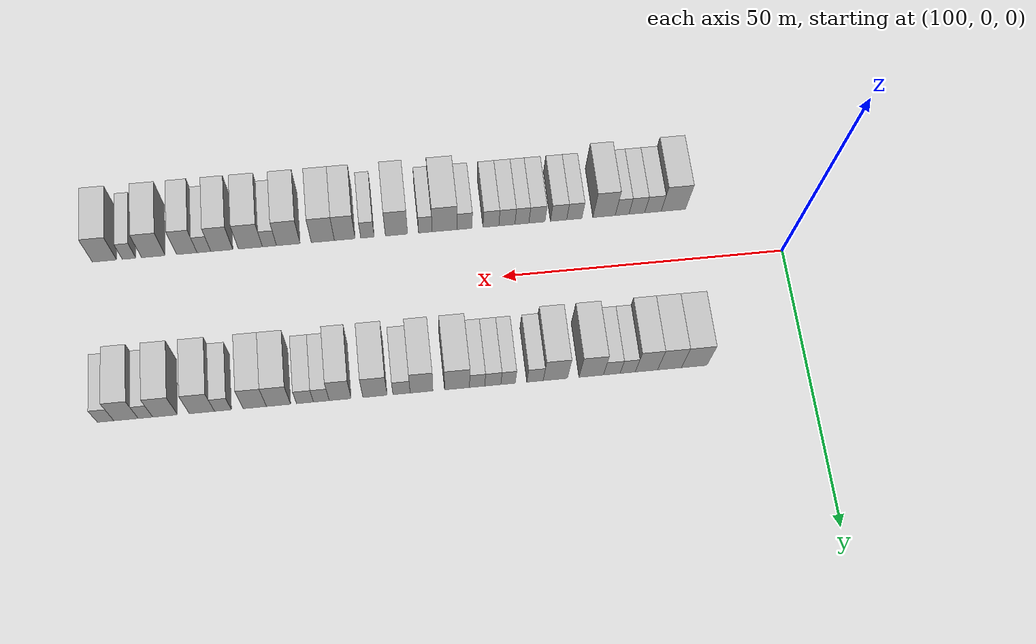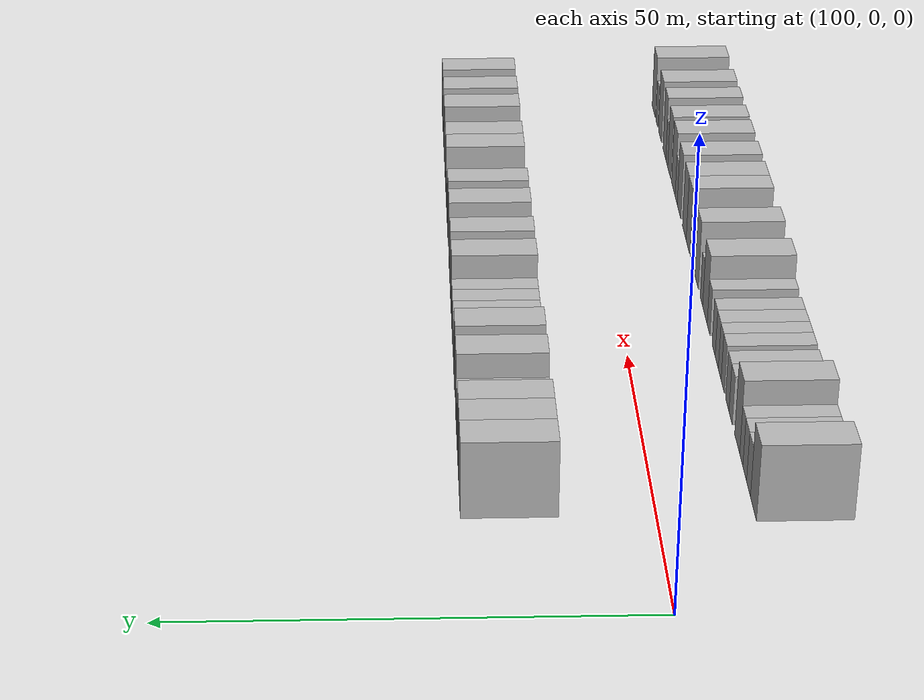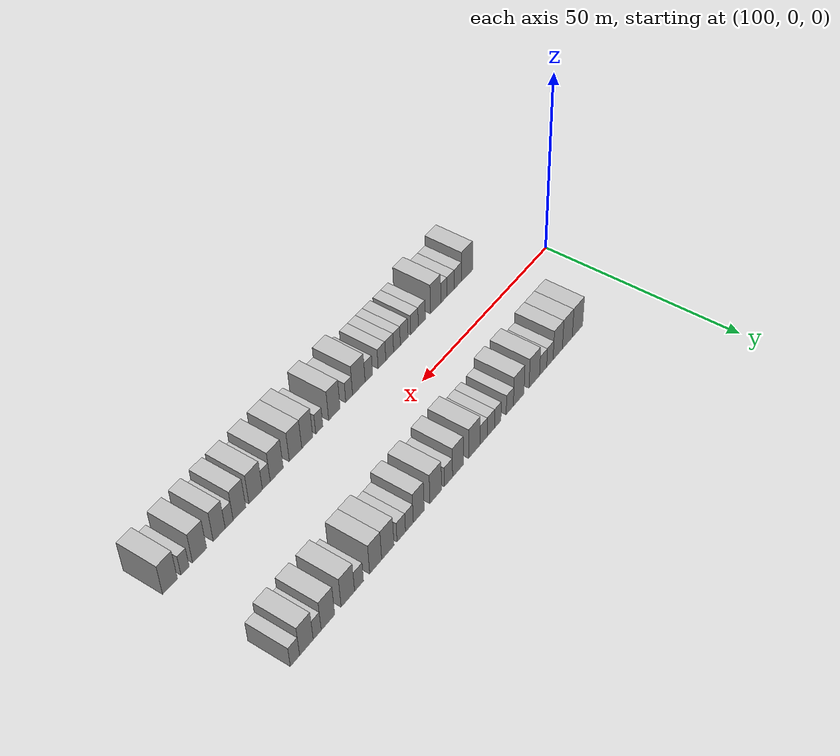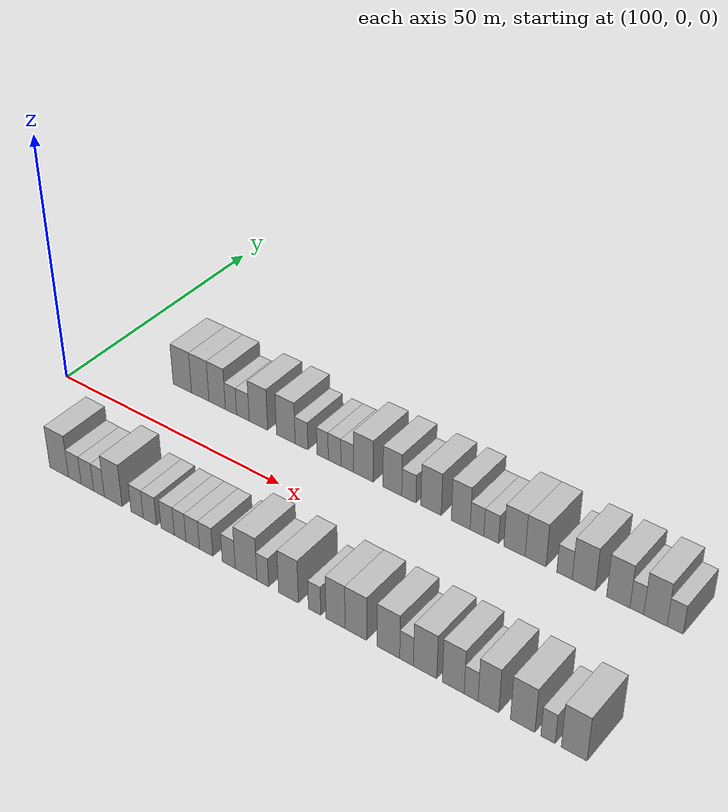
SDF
<sdf version="1.6">
 <world name="default">
  <model name="building_26">
   <static>1</static>
   <pose>119.2425 15.0000 0 0.000000 0.000000 1.570796</pose>
   <link name="link">
    <pose>0 0 4.50 0 0 0</pose>
    <collision name="collision"><geometry><box><size>10.0000 4.4233 9.0000</size></box></geometry></collision>
    <visual name="visual">
     <cast_shadows>0</cast_shadows>
     <geometry><box><size>10.0000 4.4233 9.0000</size></box></geometry>
     <material>
      <script>
       <uri>model://HANNAS_wall/materials/scripts</uri>
       <uri>model://HANNAS_wall/materials/textures</uri>
       <name>vrc/HANNAS_wall</name>
      </script>
     </material>
    </visual>
   </link>
  </model>
  <model name="building_27">
   <static>1</static>
   <pose>123.5292 15.0000 0 0.000000 0.000000 1.570796</pose>
   <link name="link">
    <pose>0 0 4.50 0 0 0</pose>
    <collision name="collision"><geometry><box><size>10.0000 4.1503 9.0000</size></box></geometry></collision>
    <visual name="visual">
     <cast_shadows>0</cast_shadows>
     <geometry><box><size>10.0000 4.1503 9.0000</size></box></geometry>
     <material>
      <script>
       <uri>model://HANNAS_wall/materials/scripts</uri>
       <uri>model://HANNAS_wall/materials/textures</uri>
       <name>vrc/HANNAS_wall</name>
      </script>
     </material>
    </visual>
   </link>
  </model>
  <model name="building_28">
   <static>1</static>
   <pose>127.5365 15.0000 0 0.000000 0.000000 1.570796</pose>
   <link name="link">
    <pose>0 0 4.50 0 0 0</pose>
    <collision name="collision"><geometry><box><size>10.0000 3.8643 9.0000</size></box></geometry></collision>
    <visual name="visual">
     <cast_shadows>0</cast_shadows>
     <geometry><box><size>10.0000 3.8643 9.0000</size></box></geometry>
     <material>
      <script>
       <uri>model://HANNAS_wall/materials/scripts</uri>
       <uri>model://HANNAS_wall/materials/textures</uri>
       <name>vrc/HANNAS_wall</name>
      </script>
     </material>
    </visual>
   </link>
  </model>
  <model name="building_29">
   <static>1</static>
   <pose>130.7800 15.0000 0 0.000000 0.000000 1.570796</pose>
   <link name="link">
    <pose>0 0 3.00 0 0 0</pose>
    <collision name="collision"><geometry><box><size>10.0000 2.6229 6.0000</size></box></geometry></collision>
    <visual name="visual">
     <cast_shadows>0</cast_shadows>
     <geometry><box><size>10.0000 2.6229 6.0000</size></box></geometry>
     <material>
      <script>
       <uri>model://HANNAS_wall/materials/scripts</uri>
       <uri>model://HANNAS_wall/materials/textures</uri>
       <name>vrc/HANNAS_wall</name>
      </script>
     </material>
    </visual>
   </link>
  </model>
  <model name="building_30">
   <static>1</static>
   <pose>133.5405 15.0000 0 0.000000 0.000000 1.570796</pose>
   <link name="link">
    <pose>0 0 3.00 0 0 0</pose>
    <collision name="collision"><geometry><box><size>10.0000 2.8981 6.0000</size></box></geometry></collision>
    <visual name="visual">
     <cast_shadows>0</cast_shadows>
     <geometry><box><size>10.0000 2.8981 6.0000</size></box></geometry>
     <material>
      <script>
       <uri>model://HANNAS_wall/materials/scripts</uri>
       <uri>model://HANNAS_wall/materials/textures</uri>
       <name>vrc/HANNAS_wall</name>
      </script>
     </material>
    </visual>
   </link>
  </model>
  <model name="building_31">
   <static>1</static>
   <pose>137.0973 15.0000 0 0.000000 0.000000 1.570796</pose>
   <link name="link">
    <pose>0 0 4.50 0 0 0</pose>
    <collision name="collision"><geometry><box><size>10.0000 4.2155 9.0000</size></box></geometry></collision>
    <visual name="visual">
     <cast_shadows>0</cast_shadows>
     <geometry><box><size>10.0000 4.2155 9.0000</size></box></geometry>
     <material>
      <script>
       <uri>model://HANNAS_wall/materials/scripts</uri>
       <uri>model://HANNAS_wall/materials/textures</uri>
       <name>vrc/HANNAS_wall</name>
      </script>
     </material>
    </visual>
   </link>
  </model>
  <model name="building_32">
   <static>1</static>
   <pose>143.2945 15.0000 0 0.000000 0.000000 1.570796</pose>
   <link name="link">
    <pose>0 0 4.50 0 0 0</pose>
    <collision name="collision"><geometry><box><size>10.0000 4.1790 9.0000</size></box></geometry></collision>
    <visual name="visual">
     <cast_shadows>0</cast_shadows>
     <geometry><box><size>10.0000 4.1790 9.0000</size></box></geometry>
     <material>
      <script>
       <uri>model://HANNAS_wall/materials/scripts</uri>
       <uri>model://HANNAS_wall/materials/textures</uri>
       <name>vrc/HANNAS_wall</name>
      </script>
     </material>
    </visual>
   </link>
  </model>
  <model name="building_33">
   <static>1</static>
   <pose>146.7900 15.0000 0 0.000000 0.000000 1.570796</pose>
   <link name="link">
    <pose>0 0 3.00 0 0 0</pose>
    <collision name="collision"><geometry><box><size>10.0000 2.8119 6.0000</size></box></geometry></collision>
    <visual name="visual">
     <cast_shadows>0</cast_shadows>
     <geometry><box><size>10.0000 2.8119 6.0000</size></box></geometry>
     <material>
      <script>
       <uri>model://HANNAS_wall/materials/scripts</uri>
       <uri>model://HANNAS_wall/materials/textures</uri>
       <name>vrc/HANNAS_wall</name>
      </script>
     </material>
    </visual>
   </link>
  </model>
  <model name="building_34">
   <static>1</static>
   <pose>151.4294 15.0000 0 0.000000 0.000000 1.570796</pose>
   <link name="link">
    <pose>0 0 3.00 0 0 0</pose>
    <collision name="collision"><geometry><box><size>10.0000 2.4668 6.0000</size></box></geometry></collision>
    <visual name="visual">
     <cast_shadows>0</cast_shadows>
     <geometry><box><size>10.0000 2.4668 6.0000</size></box></geometry>
     <material>
      <script>
       <uri>model://HANNAS_wall/materials/scripts</uri>
       <uri>model://HANNAS_wall/materials/textures</uri>
       <name>vrc/HANNAS_wall</name>
      </script>
     </material>
    </visual>
   </link>
  </model>
  <model name="building_35">
   <static>1</static>
   <pose>154.0448 15.0000 0 0.000000 0.000000 1.570796</pose>
   <link name="link">
    <pose>0 0 3.00 0 0 0</pose>
    <collision name="collision"><geometry><box><size>10.0000 2.7641 6.0000</size></box></geometry></collision>
    <visual name="visual">
     <cast_shadows>0</cast_shadows>
     <geometry><box><size>10.0000 2.7641 6.0000</size></box></geometry>
     <material>
      <script>
       <uri>model://HANNAS_wall/materials/scripts</uri>
       <uri>model://HANNAS_wall/materials/textures</uri>
       <name>vrc/HANNAS_wall</name>
      </script>
     </material>
    </visual>
   </link>
  </model>
  <model name="building_36">
   <static>1</static>
   <pose>156.7458 15.0000 0 0.000000 0.000000 1.570796</pose>
   <link name="link">
    <pose>0 0 3.00 0 0 0</pose>
    <collision name="collision"><geometry><box><size>10.0000 2.6380 6.0000</size></box></geometry></collision>
    <visual name="visual">
     <cast_shadows>0</cast_shadows>
     <geometry><box><size>10.0000 2.6380 6.0000</size></box></geometry>
     <material>
      <script>
       <uri>model://HANNAS_wall/materials/scripts</uri>
       <uri>model://HANNAS_wall/materials/textures</uri>
       <name>vrc/HANNAS_wall</name>
      </script>
     </material>
    </visual>
   </link>
  </model>
  <model name="building_37">
   <static>1</static>
   <pose>160.1915 15.0000 0 0.000000 0.000000 1.570796</pose>
   <link name="link">
    <pose>0 0 4.50 0 0 0</pose>
    <collision name="collision"><geometry><box><size>10.0000 4.2535 9.0000</size></box></geometry></collision>
    <visual name="visual">
     <cast_shadows>0</cast_shadows>
     <geometry><box><size>10.0000 4.2535 9.0000</size></box></geometry>
     <material>
      <script>
       <uri>model://HANNAS_wall/materials/scripts</uri>
       <uri>model://HANNAS_wall/materials/textures</uri>
       <name>vrc/HANNAS_wall</name>
      </script>
     </material>
    </visual>
   </link>
  </model>
  <model name="building_38">
   <static>1</static>
   <pose>166.2654 15.0000 0 0.000000 0.000000 1.570796</pose>
   <link name="link">
    <pose>0 0 4.50 0 0 0</pose>
    <collision name="collision"><geometry><box><size>10.0000 3.8942 9.0000</size></box></geometry></collision>
    <visual name="visual">
     <cast_shadows>0</cast_shadows>
     <geometry><box><size>10.0000 3.8942 9.0000</size></box></geometry>
     <material>
      <script>
       <uri>model://HANNAS_wall/materials/scripts</uri>
       <uri>model://HANNAS_wall/materials/textures</uri>
       <name>vrc/HANNAS_wall</name>
      </script>
     </material>
    </visual>
   </link>
  </model>
  <model name="building_39">
   <static>1</static>
   <pose>169.6782 15.0000 0 0.000000 0.000000 1.570796</pose>
   <link name="link">
    <pose>0 0 3.00 0 0 0</pose>
    <collision name="collision"><geometry><box><size>10.0000 2.9316 6.0000</size></box></geometry></collision>
    <visual name="visual">
     <cast_shadows>0</cast_shadows>
     <geometry><box><size>10.0000 2.9316 6.0000</size></box></geometry>
     <material>
      <script>
       <uri>model://HANNAS_wall/materials/scripts</uri>
       <uri>model://HANNAS_wall/materials/textures</uri>
       <name>vrc/HANNAS_wall</name>
      </script>
     </material>
    </visual>
   </link>
  </model>
  <model name="building_40">
   <static>1</static>
   <pose>174.2125 15.0000 0 0.000000 0.000000 1.570796</pose>
   <link name="link">
    <pose>0 0 4.50 0 0 0</pose>
    <collision name="collision"><geometry><box><size>10.0000 4.1370 9.0000</size></box></geometry></collision>
    <visual name="visual">
     <cast_shadows>0</cast_shadows>
     <geometry><box><size>10.0000 4.1370 9.0000</size></box></geometry>
     <material>
      <script>
       <uri>model://HANNAS_wall/materials/scripts</uri>
       <uri>model://HANNAS_wall/materials/textures</uri>
       <name>vrc/HANNAS_wall</name>
      </script>
     </material>
    </visual>
   </link>
  </model>
  <model name="building_41">
   <static>1</static>
   <pose>180.1501 15.0000 0 0.000000 0.000000 1.570796</pose>
   <link name="link">
    <pose>0 0 4.50 0 0 0</pose>
    <collision name="collision"><geometry><box><size>10.0000 3.7381 9.0000</size></box></geometry></collision>
    <visual name="visual">
     <cast_shadows>0</cast_shadows>
     <geometry><box><size>10.0000 3.7381 9.0000</size></box></geometry>
     <material>
      <script>
       <uri>model://HANNAS_wall/materials/scripts</uri>
       <uri>model://HANNAS_wall/materials/textures</uri>
       <name>vrc/HANNAS_wall</name>
      </script>
     </material>
    </visual>
   </link>
  </model>
  <model name="building_42">
   <static>1</static>
   <pose>183.3578 15.0000 0 0.000000 0.000000 1.570796</pose>
   <link name="link">
    <pose>0 0 3.00 0 0 0</pose>
    <collision name="collision"><geometry><box><size>10.0000 2.6774 6.0000</size></box></geometry></collision>
    <visual name="visual">
     <cast_shadows>0</cast_shadows>
     <geometry><box><size>10.0000 2.6774 6.0000</size></box></geometry>
     <material>
      <script>
       <uri>model://HANNAS_wall/materials/scripts</uri>
       <uri>model://HANNAS_wall/materials/textures</uri>
       <name>vrc/HANNAS_wall</name>
      </script>
     </material>
    </visual>
   </link>
  </model>
  <model name="building_43">
   <static>1</static>
   <pose>186.1347 15.0000 0 0.000000 0.000000 1.570796</pose>
   <link name="link">
    <pose>0 0 3.00 0 0 0</pose>
    <collision name="collision"><geometry><box><size>10.0000 2.8764 6.0000</size></box></geometry></collision>
    <visual name="visual">
     <cast_shadows>0</cast_shadows>
     <geometry><box><size>10.0000 2.8764 6.0000</size></box></geometry>
     <material>
      <script>
       <uri>model://HANNAS_wall/materials/scripts</uri>
       <uri>model://HANNAS_wall/materials/textures</uri>
       <name>vrc/HANNAS_wall</name>
      </script>
     </material>
    </visual>
   </link>
  </model>
  <model name="building_44">
   <static>1</static>
   <pose>190.6257 15.0000 0 0.000000 0.000000 1.570796</pose>
   <link name="link">
    <pose>0 0 4.50 0 0 0</pose>
    <collision name="collision"><geometry><box><size>10.0000 4.1056 9.0000</size></box></geometry></collision>
    <visual name="visual">
     <cast_shadows>0</cast_shadows>
     <geometry><box><size>10.0000 4.1056 9.0000</size></box></geometry>
     <material>
      <script>
       <uri>model://HANNAS_wall/materials/scripts</uri>
       <uri>model://HANNAS_wall/materials/textures</uri>
       <name>vrc/HANNAS_wall</name>
      </script>
     </material>
    </visual>
   </link>
  </model>
  <model name="building_45">
   <static>1</static>
   <pose>194.6477 15.0000 0 0.000000 0.000000 1.570796</pose>
   <link name="link">
    <pose>0 0 4.50 0 0 0</pose>
    <collision name="collision"><geometry><box><size>10.0000 3.9384 9.0000</size></box></geometry></collision>
    <visual name="visual">
     <cast_shadows>0</cast_shadows>
     <geometry><box><size>10.0000 3.9384 9.0000</size></box></geometry>
     <material>
      <script>
       <uri>model://HANNAS_wall/materials/scripts</uri>
       <uri>model://HANNAS_wall/materials/textures</uri>
       <name>vrc/HANNAS_wall</name>
      </script>
     </material>
    </visual>
   </link>
  </model>
  <model name="building_46">
   <static>1</static>
   <pose>200.0471 15.0000 0 0.000000 0.000000 1.570796</pose>
   <link name="link">
    <pose>0 0 3.00 0 0 0</pose>
    <collision name="collision"><geometry><box><size>10.0000 2.8604 6.0000</size></box></geometry></collision>
    <visual name="visual">
     <cast_shadows>0</cast_shadows>
     <geometry><box><size>10.0000 2.8604 6.0000</size></box></geometry>
     <material>
      <script>
       <uri>model://HANNAS_wall/materials/scripts</uri>
       <uri>model://HANNAS_wall/materials/textures</uri>
       <name>vrc/HANNAS_wall</name>
      </script>
     </material>
    </visual>
   </link>
  </model>
  <model name="building_47">
   <static>1</static>
   <pose>203.6051 15.0000 0 0.000000 0.000000 1.570796</pose>
   <link name="link">
    <pose>0 0 4.50 0 0 0</pose>
    <collision name="collision"><geometry><box><size>10.0000 4.2556 9.0000</size></box></geometry></collision>
    <visual name="visual">
     <cast_shadows>0</cast_shadows>
     <geometry><box><size>10.0000 4.2556 9.0000</size></box></geometry>
     <material>
      <script>
       <uri>model://HANNAS_wall/materials/scripts</uri>
       <uri>model://HANNAS_wall/materials/textures</uri>
       <name>vrc/HANNAS_wall</name>
      </script>
     </material>
    </visual>
   </link>
  </model>
  <model name="building_48">
   <static>1</static>
   <pose>209.8230 15.0000 0 0.000000 0.000000 1.570796</pose>
   <link name="link">
    <pose>0 0 4.50 0 0 0</pose>
    <collision name="collision"><geometry><box><size>10.0000 4.1801 9.0000</size></box></geometry></collision>
    <visual name="visual">
     <cast_shadows>0</cast_shadows>
     <geometry><box><size>10.0000 4.1801 9.0000</size></box></geometry>
     <material>
      <script>
       <uri>model://HANNAS_wall/materials/scripts</uri>
       <uri>model://HANNAS_wall/materials/textures</uri>
       <name>vrc/HANNAS_wall</name>
      </script>
     </material>
    </visual>
   </link>
  </model>
  <model name="building_49">
   <static>1</static>
   <pose>213.1358 15.0000 0 0.000000 0.000000 1.570796</pose>
   <link name="link">
    <pose>0 0 3.00 0 0 0</pose>
    <collision name="collision"><geometry><box><size>10.0000 2.4456 6.0000</size></box></geometry></collision>
    <visual name="visual">
     <cast_shadows>0</cast_shadows>
     <geometry><box><size>10.0000 2.4456 6.0000</size></box></geometry>
     <material>
      <script>
       <uri>model://HANNAS_wall/materials/scripts</uri>
       <uri>model://HANNAS_wall/materials/textures</uri>
       <name>vrc/HANNAS_wall</name>
      </script>
     </material>
    </visual>
   </link>
  </model>
  <model name="building_50">
   <static>1</static>
   <pose>216.4056 15.0000 0 0.000000 0.000000 1.570796</pose>
   <link name="link">
    <pose>0 0 4.50 0 0 0</pose>
    <collision name="collision"><geometry><box><size>10.0000 4.0941 9.0000</size></box></geometry></collision>
    <visual name="visual">
     <cast_shadows>0</cast_shadows>
     <geometry><box><size>10.0000 4.0941 9.0000</size></box></geometry>
     <material>
      <script>
       <uri>model://HANNAS_wall/materials/scripts</uri>
       <uri>model://HANNAS_wall/materials/textures</uri>
       <name>vrc/HANNAS_wall</name>
      </script>
     </material>
    </visual>
   </link>
  </model>
  <model name="building_51">
   <static>1</static>
   <pose>219.8437 15.0000 0 0.000000 0.000000 1.570796</pose>
   <link name="link">
    <pose>0 0 3.00 0 0 0</pose>
    <collision name="collision"><geometry><box><size>10.0000 2.7820 6.0000</size></box></geometry></collision>
    <visual name="visual">
     <cast_shadows>0</cast_shadows>
     <geometry><box><size>10.0000 2.7820 6.0000</size></box></geometry>
     <material>
      <script>
       <uri>model://HANNAS_wall/materials/scripts</uri>
       <uri>model://HANNAS_wall/materials/textures</uri>
       <name>vrc/HANNAS_wall</name>
      </script>
     </material>
    </visual>
   </link>
  </model>
  <model name="building_79">
   <static>1</static>
   <pose>117.9787 -15.0000 0 0.000000 0.000000 1.570796</pose>
   <link name="link">
    <pose>0 0 4.50 0 0 0</pose>
    <collision name="collision"><geometry><box><size>10.0000 4.4465 9.0000</size></box></geometry></collision>
    <visual name="visual">
     <cast_shadows>0</cast_shadows>
     <geometry><box><size>10.0000 4.4465 9.0000</size></box></geometry>
     <material>
      <script>
       <uri>model://HANNAS_wall/materials/scripts</uri>
       <uri>model://HANNAS_wall/materials/textures</uri>
       <name>vrc/HANNAS_wall</name>
      </script>
     </material>
    </visual>
   </link>
  </model>
  <model name="building_80">
   <static>1</static>
   <pose>121.6949 -15.0000 0 0.000000 0.000000 1.570796</pose>
   <link name="link">
    <pose>0 0 3.00 0 0 0</pose>
    <collision name="collision"><geometry><box><size>10.0000 2.9858 6.0000</size></box></geometry></collision>
    <visual name="visual">
     <cast_shadows>0</cast_shadows>
     <geometry><box><size>10.0000 2.9858 6.0000</size></box></geometry>
     <material>
      <script>
       <uri>model://HANNAS_wall/materials/scripts</uri>
       <uri>model://HANNAS_wall/materials/textures</uri>
       <name>vrc/HANNAS_wall</name>
      </script>
     </material>
    </visual>
   </link>
  </model>
  <model name="building_81">
   <static>1</static>
   <pose>124.6248 -15.0000 0 0.000000 0.000000 1.570796</pose>
   <link name="link">
    <pose>0 0 3.00 0 0 0</pose>
    <collision name="collision"><geometry><box><size>10.0000 2.8740 6.0000</size></box></geometry></collision>
    <visual name="visual">
     <cast_shadows>0</cast_shadows>
     <geometry><box><size>10.0000 2.8740 6.0000</size></box></geometry>
     <material>
      <script>
       <uri>model://HANNAS_wall/materials/scripts</uri>
       <uri>model://HANNAS_wall/materials/textures</uri>
       <name>vrc/HANNAS_wall</name>
      </script>
     </material>
    </visual>
   </link>
  </model>
  <model name="building_82">
   <static>1</static>
   <pose>127.3049 -15.0000 0 0.000000 0.000000 1.570796</pose>
   <link name="link">
    <pose>0 0 3.00 0 0 0</pose>
    <collision name="collision"><geometry><box><size>10.0000 2.4861 6.0000</size></box></geometry></collision>
    <visual name="visual">
     <cast_shadows>0</cast_shadows>
     <geometry><box><size>10.0000 2.4861 6.0000</size></box></geometry>
     <material>
      <script>
       <uri>model://HANNAS_wall/materials/scripts</uri>
       <uri>model://HANNAS_wall/materials/textures</uri>
       <name>vrc/HANNAS_wall</name>
      </script>
     </material>
    </visual>
   </link>
  </model>
  <model name="building_83">
   <static>1</static>
   <pose>130.5789 -15.0000 0 0.000000 0.000000 1.570796</pose>
   <link name="link">
    <pose>0 0 4.50 0 0 0</pose>
    <collision name="collision"><geometry><box><size>10.0000 4.0619 9.0000</size></box></geometry></collision>
    <visual name="visual">
     <cast_shadows>0</cast_shadows>
     <geometry><box><size>10.0000 4.0619 9.0000</size></box></geometry>
     <material>
      <script>
       <uri>model://HANNAS_wall/materials/scripts</uri>
       <uri>model://HANNAS_wall/materials/textures</uri>
       <name>vrc/HANNAS_wall</name>
      </script>
     </material>
    </visual>
   </link>
  </model>
  <model name="building_84">
   <static>1</static>
   <pose>135.9889 -15.0000 0 0.000000 0.000000 1.570796</pose>
   <link name="link">
    <pose>0 0 3.00 0 0 0</pose>
    <collision name="collision"><geometry><box><size>10.0000 2.7581 6.0000</size></box></geometry></collision>
    <visual name="visual">
     <cast_shadows>0</cast_shadows>
     <geometry><box><size>10.0000 2.7581 6.0000</size></box></geometry>
     <material>
      <script>
       <uri>model://HANNAS_wall/materials/scripts</uri>
       <uri>model://HANNAS_wall/materials/textures</uri>
       <name>vrc/HANNAS_wall</name>
      </script>
     </material>
    </visual>
   </link>
  </model>
  <model name="building_85">
   <static>1</static>
   <pose>138.8345 -15.0000 0 0.000000 0.000000 1.570796</pose>
   <link name="link">
    <pose>0 0 3.00 0 0 0</pose>
    <collision name="collision"><geometry><box><size>10.0000 2.9330 6.0000</size></box></geometry></collision>
    <visual name="visual">
     <cast_shadows>0</cast_shadows>
     <geometry><box><size>10.0000 2.9330 6.0000</size></box></geometry>
     <material>
      <script>
       <uri>model://HANNAS_wall/materials/scripts</uri>
       <uri>model://HANNAS_wall/materials/textures</uri>
       <name>vrc/HANNAS_wall</name>
      </script>
     </material>
    </visual>
   </link>
  </model>
  <model name="building_86">
   <static>1</static>
   <pose>142.7558 -15.0000 0 0.000000 0.000000 1.570796</pose>
   <link name="link">
    <pose>0 0 3.00 0 0 0</pose>
    <collision name="collision"><geometry><box><size>10.0000 2.9097 6.0000</size></box></geometry></collision>
    <visual name="visual">
     <cast_shadows>0</cast_shadows>
     <geometry><box><size>10.0000 2.9097 6.0000</size></box></geometry>
     <material>
      <script>
       <uri>model://HANNAS_wall/materials/scripts</uri>
       <uri>model://HANNAS_wall/materials/textures</uri>
       <name>vrc/HANNAS_wall</name>
      </script>
     </material>
    </visual>
   </link>
  </model>
  <model name="building_87">
   <static>1</static>
   <pose>145.4716 -15.0000 0 0.000000 0.000000 1.570796</pose>
   <link name="link">
    <pose>0 0 3.00 0 0 0</pose>
    <collision name="collision"><geometry><box><size>10.0000 2.5219 6.0000</size></box></geometry></collision>
    <visual name="visual">
     <cast_shadows>0</cast_shadows>
     <geometry><box><size>10.0000 2.5219 6.0000</size></box></geometry>
     <material>
      <script>
       <uri>model://HANNAS_wall/materials/scripts</uri>
       <uri>model://HANNAS_wall/materials/textures</uri>
       <name>vrc/HANNAS_wall</name>
      </script>
     </material>
    </visual>
   </link>
  </model>
  <model name="building_88">
   <static>1</static>
   <pose>148.1837 -15.0000 0 0.000000 0.000000 1.570796</pose>
   <link name="link">
    <pose>0 0 3.00 0 0 0</pose>
    <collision name="collision"><geometry><box><size>10.0000 2.9024 6.0000</size></box></geometry></collision>
    <visual name="visual">
     <cast_shadows>0</cast_shadows>
     <geometry><box><size>10.0000 2.9024 6.0000</size></box></geometry>
     <material>
      <script>
       <uri>model://HANNAS_wall/materials/scripts</uri>
       <uri>model://HANNAS_wall/materials/textures</uri>
       <name>vrc/HANNAS_wall</name>
      </script>
     </material>
    </visual>
   </link>
  </model>
  <model name="building_89">
   <static>1</static>
   <pose>151.0608 -15.0000 0 0.000000 0.000000 1.570796</pose>
   <link name="link">
    <pose>0 0 3.00 0 0 0</pose>
    <collision name="collision"><geometry><box><size>10.0000 2.8518 6.0000</size></box></geometry></collision>
    <visual name="visual">
     <cast_shadows>0</cast_shadows>
     <geometry><box><size>10.0000 2.8518 6.0000</size></box></geometry>
     <material>
      <script>
       <uri>model://HANNAS_wall/materials/scripts</uri>
       <uri>model://HANNAS_wall/materials/textures</uri>
       <name>vrc/HANNAS_wall</name>
      </script>
     </material>
    </visual>
   </link>
  </model>
  <model name="building_90">
   <static>1</static>
   <pose>155.8442 -15.0000 0 0.000000 0.000000 1.570796</pose>
   <link name="link">
    <pose>0 0 3.00 0 0 0</pose>
    <collision name="collision"><geometry><box><size>10.0000 2.7149 6.0000</size></box></geometry></collision>
    <visual name="visual">
     <cast_shadows>0</cast_shadows>
     <geometry><box><size>10.0000 2.7149 6.0000</size></box></geometry>
     <material>
      <script>
       <uri>model://HANNAS_wall/materials/scripts</uri>
       <uri>model://HANNAS_wall/materials/textures</uri>
       <name>vrc/HANNAS_wall</name>
      </script>
     </material>
    </visual>
   </link>
  </model>
  <model name="building_91">
   <static>1</static>
   <pose>159.4408 -15.0000 0 0.000000 0.000000 1.570796</pose>
   <link name="link">
    <pose>0 0 4.50 0 0 0</pose>
    <collision name="collision"><geometry><box><size>10.0000 4.4785 9.0000</size></box></geometry></collision>
    <visual name="visual">
     <cast_shadows>0</cast_shadows>
     <geometry><box><size>10.0000 4.4785 9.0000</size></box></geometry>
     <material>
      <script>
       <uri>model://HANNAS_wall/materials/scripts</uri>
       <uri>model://HANNAS_wall/materials/textures</uri>
       <name>vrc/HANNAS_wall</name>
      </script>
     </material>
    </visual>
   </link>
  </model>
  <model name="building_92">
   <static>1</static>
   <pose>162.8826 -15.0000 0 0.000000 0.000000 1.570796</pose>
   <link name="link">
    <pose>0 0 3.00 0 0 0</pose>
    <collision name="collision"><geometry><box><size>10.0000 2.4051 6.0000</size></box></geometry></collision>
    <visual name="visual">
     <cast_shadows>0</cast_shadows>
     <geometry><box><size>10.0000 2.4051 6.0000</size></box></geometry>
     <material>
      <script>
       <uri>model://HANNAS_wall/materials/scripts</uri>
       <uri>model://HANNAS_wall/materials/textures</uri>
       <name>vrc/HANNAS_wall</name>
      </script>
     </material>
    </visual>
   </link>
  </model>
  <model name="building_93">
   <static>1</static>
   <pose>168.0672 -15.0000 0 0.000000 0.000000 1.570796</pose>
   <link name="link">
    <pose>0 0 4.50 0 0 0</pose>
    <collision name="collision"><geometry><box><size>10.0000 3.9642 9.0000</size></box></geometry></collision>
    <visual name="visual">
     <cast_shadows>0</cast_shadows>
     <geometry><box><size>10.0000 3.9642 9.0000</size></box></geometry>
     <material>
      <script>
       <uri>model://HANNAS_wall/materials/scripts</uri>
       <uri>model://HANNAS_wall/materials/textures</uri>
       <name>vrc/HANNAS_wall</name>
      </script>
     </material>
    </visual>
   </link>
  </model>
  <model name="building_94">
   <static>1</static>
   <pose>173.2608 -15.0000 0 0.000000 0.000000 1.570796</pose>
   <link name="link">
    <pose>0 0 3.00 0 0 0</pose>
    <collision name="collision"><geometry><box><size>10.0000 2.4228 6.0000</size></box></geometry></collision>
    <visual name="visual">
     <cast_shadows>0</cast_shadows>
     <geometry><box><size>10.0000 2.4228 6.0000</size></box></geometry>
     <material>
      <script>
       <uri>model://HANNAS_wall/materials/scripts</uri>
       <uri>model://HANNAS_wall/materials/textures</uri>
       <name>vrc/HANNAS_wall</name>
      </script>
     </material>
    </visual>
   </link>
  </model>
  <model name="building_95">
   <static>1</static>
   <pose>177.3293 -15.0000 0 0.000000 0.000000 1.570796</pose>
   <link name="link">
    <pose>0 0 4.50 0 0 0</pose>
    <collision name="collision"><geometry><box><size>10.0000 3.7142 9.0000</size></box></geometry></collision>
    <visual name="visual">
     <cast_shadows>0</cast_shadows>
     <geometry><box><size>10.0000 3.7142 9.0000</size></box></geometry>
     <material>
      <script>
       <uri>model://HANNAS_wall/materials/scripts</uri>
       <uri>model://HANNAS_wall/materials/textures</uri>
       <name>vrc/HANNAS_wall</name>
      </script>
     </material>
    </visual>
   </link>
  </model>
  <model name="building_96">
   <static>1</static>
   <pose>181.2503 -15.0000 0 0.000000 0.000000 1.570796</pose>
   <link name="link">
    <pose>0 0 4.50 0 0 0</pose>
    <collision name="collision"><geometry><box><size>10.0000 4.1279 9.0000</size></box></geometry></collision>
    <visual name="visual">
     <cast_shadows>0</cast_shadows>
     <geometry><box><size>10.0000 4.1279 9.0000</size></box></geometry>
     <material>
      <script>
       <uri>model://HANNAS_wall/materials/scripts</uri>
       <uri>model://HANNAS_wall/materials/textures</uri>
       <name>vrc/HANNAS_wall</name>
      </script>
     </material>
    </visual>
   </link>
  </model>
  <model name="building_97">
   <static>1</static>
   <pose>187.4194 -15.0000 0 0.000000 0.000000 1.570796</pose>
   <link name="link">
    <pose>0 0 4.50 0 0 0</pose>
    <collision name="collision"><geometry><box><size>10.0000 4.2103 9.0000</size></box></geometry></collision>
    <visual name="visual">
     <cast_shadows>0</cast_shadows>
     <geometry><box><size>10.0000 4.2103 9.0000</size></box></geometry>
     <material>
      <script>
       <uri>model://HANNAS_wall/materials/scripts</uri>
       <uri>model://HANNAS_wall/materials/textures</uri>
       <name>vrc/HANNAS_wall</name>
      </script>
     </material>
    </visual>
   </link>
  </model>
  <model name="building_98">
   <static>1</static>
   <pose>190.7848 -15.0000 0 0.000000 0.000000 1.570796</pose>
   <link name="link">
    <pose>0 0 3.00 0 0 0</pose>
    <collision name="collision"><geometry><box><size>10.0000 2.5205 6.0000</size></box></geometry></collision>
    <visual name="visual">
     <cast_shadows>0</cast_shadows>
     <geometry><box><size>10.0000 2.5205 6.0000</size></box></geometry>
     <material>
      <script>
       <uri>model://HANNAS_wall/materials/scripts</uri>
       <uri>model://HANNAS_wall/materials/textures</uri>
       <name>vrc/HANNAS_wall</name>
      </script>
     </material>
    </visual>
   </link>
  </model>
  <model name="building_99">
   <static>1</static>
   <pose>194.1779 -15.0000 0 0.000000 0.000000 1.570796</pose>
   <link name="link">
    <pose>0 0 4.50 0 0 0</pose>
    <collision name="collision"><geometry><box><size>10.0000 4.2656 9.0000</size></box></geometry></collision>
    <visual name="visual">
     <cast_shadows>0</cast_shadows>
     <geometry><box><size>10.0000 4.2656 9.0000</size></box></geometry>
     <material>
      <script>
       <uri>model://HANNAS_wall/materials/scripts</uri>
       <uri>model://HANNAS_wall/materials/textures</uri>
       <name>vrc/HANNAS_wall</name>
      </script>
     </material>
    </visual>
   </link>
  </model>
  <model name="building_100">
   <static>1</static>
   <pose>199.2642 -15.0000 0 0.000000 0.000000 1.570796</pose>
   <link name="link">
    <pose>0 0 4.50 0 0 0</pose>
    <collision name="collision"><geometry><box><size>10.0000 3.9070 9.0000</size></box></geometry></collision>
    <visual name="visual">
     <cast_shadows>0</cast_shadows>
     <geometry><box><size>10.0000 3.9070 9.0000</size></box></geometry>
     <material>
      <script>
       <uri>model://HANNAS_wall/materials/scripts</uri>
       <uri>model://HANNAS_wall/materials/textures</uri>
       <name>vrc/HANNAS_wall</name>
      </script>
     </material>
    </visual>
   </link>
  </model>
  <model name="building_101">
   <static>1</static>
   <pose>202.4451 -15.0000 0 0.000000 0.000000 1.570796</pose>
   <link name="link">
    <pose>0 0 3.00 0 0 0</pose>
    <collision name="collision"><geometry><box><size>10.0000 2.4548 6.0000</size></box></geometry></collision>
    <visual name="visual">
     <cast_shadows>0</cast_shadows>
     <geometry><box><size>10.0000 2.4548 6.0000</size></box></geometry>
     <material>
      <script>
       <uri>model://HANNAS_wall/materials/scripts</uri>
       <uri>model://HANNAS_wall/materials/textures</uri>
       <name>vrc/HANNAS_wall</name>
      </script>
     </material>
    </visual>
   </link>
  </model>
  <model name="building_102">
   <static>1</static>
   <pose>205.4907 -15.0000 0 0.000000 0.000000 1.570796</pose>
   <link name="link">
    <pose>0 0 4.50 0 0 0</pose>
    <collision name="collision"><geometry><box><size>10.0000 3.6365 9.0000</size></box></geometry></collision>
    <visual name="visual">
     <cast_shadows>0</cast_shadows>
     <geometry><box><size>10.0000 3.6365 9.0000</size></box></geometry>
     <material>
      <script>
       <uri>model://HANNAS_wall/materials/scripts</uri>
       <uri>model://HANNAS_wall/materials/textures</uri>
       <name>vrc/HANNAS_wall</name>
      </script>
     </material>
    </visual>
   </link>
  </model>
  <model name="building_103">
   <static>1</static>
   <pose>211.4007 -15.0000 0 0.000000 0.000000 1.570796</pose>
   <link name="link">
    <pose>0 0 4.50 0 0 0</pose>
    <collision name="collision"><geometry><box><size>10.0000 4.1835 9.0000</size></box></geometry></collision>
    <visual name="visual">
     <cast_shadows>0</cast_shadows>
     <geometry><box><size>10.0000 4.1835 9.0000</size></box></geometry>
     <material>
      <script>
       <uri>model://HANNAS_wall/materials/scripts</uri>
       <uri>model://HANNAS_wall/materials/textures</uri>
       <name>vrc/HANNAS_wall</name>
      </script>
     </material>
    </visual>
   </link>
  </model>
  <model name="building_104">
   <static>1</static>
   <pose>215.7031 -15.0000 0 0.000000 0.000000 1.570796</pose>
   <link name="link">
    <pose>0 0 3.00 0 0 0</pose>
    <collision name="collision"><geometry><box><size>10.0000 2.4212 6.0000</size></box></geometry></collision>
    <visual name="visual">
     <cast_shadows>0</cast_shadows>
     <geometry><box><size>10.0000 2.4212 6.0000</size></box></geometry>
     <material>
      <script>
       <uri>model://HANNAS_wall/materials/scripts</uri>
       <uri>model://HANNAS_wall/materials/textures</uri>
       <name>vrc/HANNAS_wall</name>
      </script>
     </material>
    </visual>
   </link>
  </model>
  <model name="building_105">
   <static>1</static>
   <pose>220.0563 -15.0000 0 0.000000 0.000000 1.570796</pose>
   <link name="link">
    <pose>0 0 4.50 0 0 0</pose>
    <collision name="collision"><geometry><box><size>10.0000 4.2852 9.0000</size></box></geometry></collision>
    <visual name="visual">
     <cast_shadows>0</cast_shadows>
     <geometry><box><size>10.0000 4.2852 9.0000</size></box></geometry>
     <material>
      <script>
       <uri>model://HANNAS_wall/materials/scripts</uri>
       <uri>model://HANNAS_wall/materials/textures</uri>
       <name>vrc/HANNAS_wall</name>
      </script>
     </material>
    </visual>
   </link>
  </model>
 </world>
</sdf>
